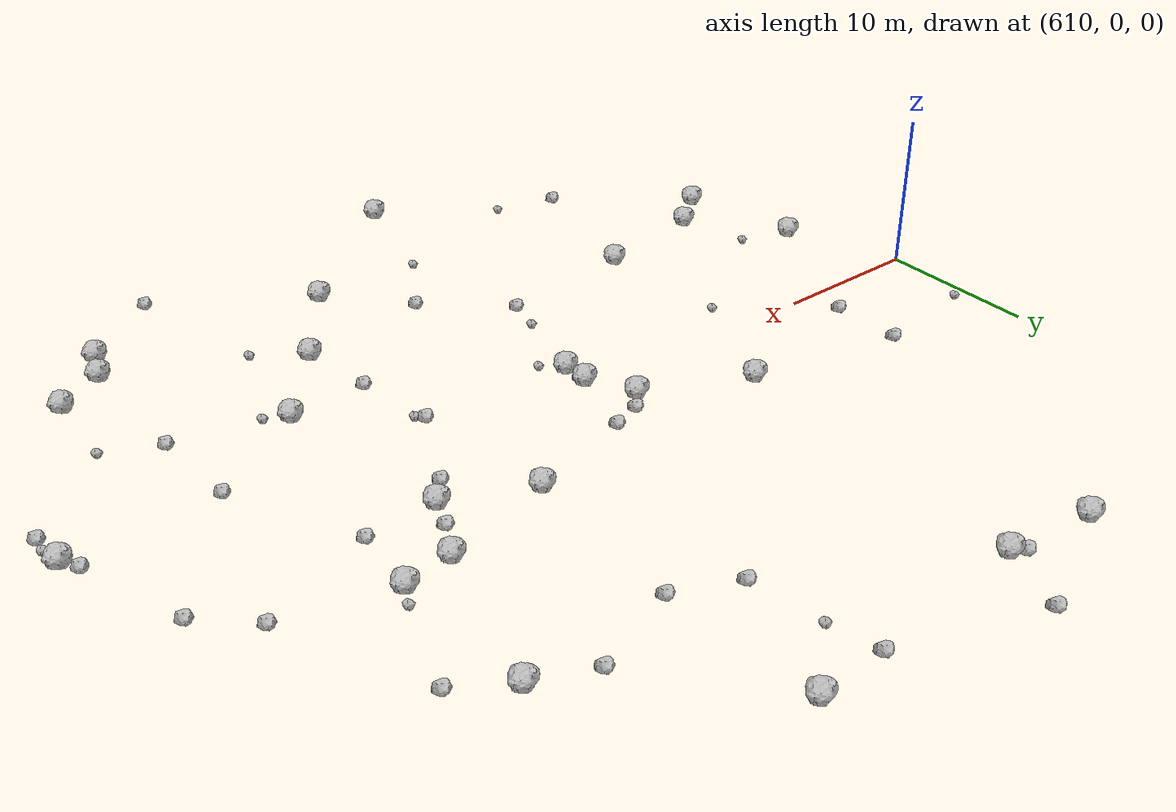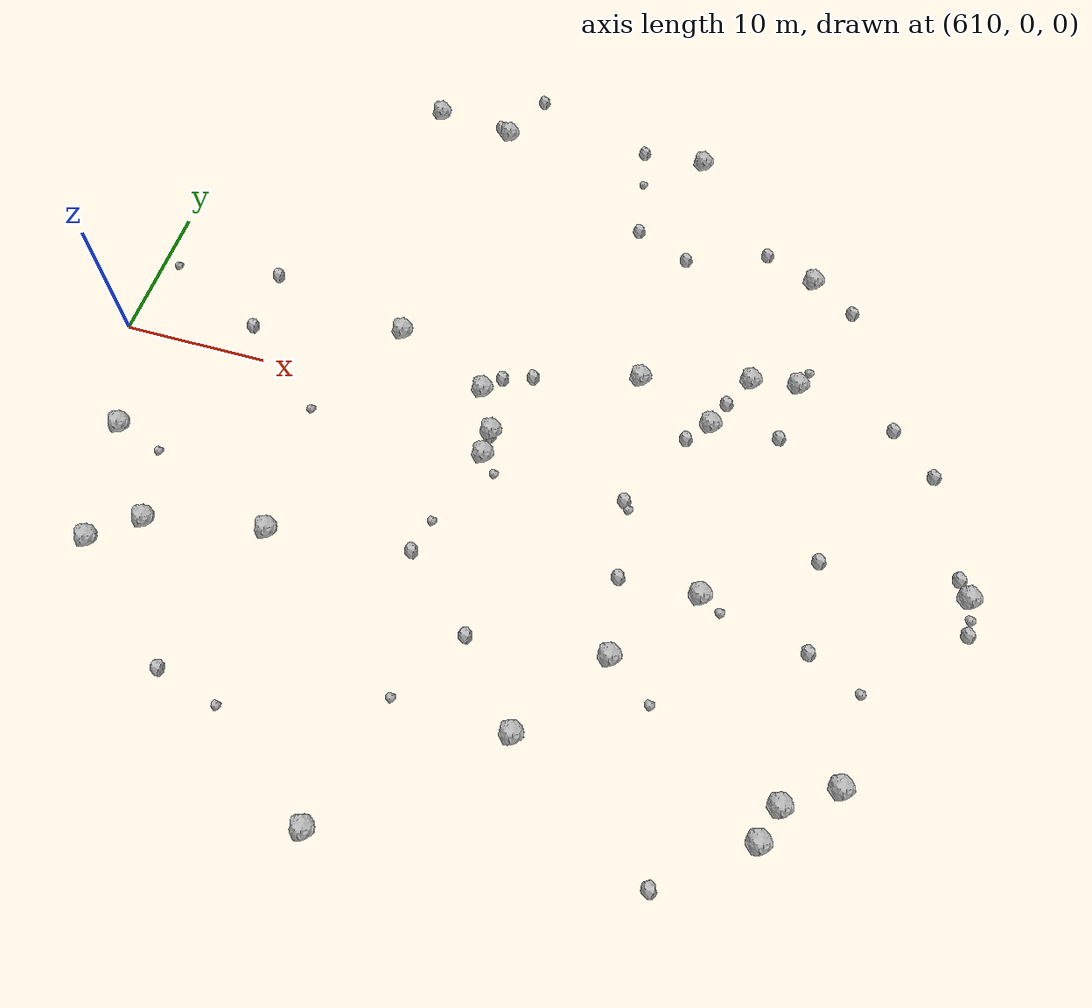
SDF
<sdf version="1.6">
 <world name="default">
  <include><uri>model://sun</uri></include>
  <model name="rock1_16_3">
   <include><uri>model://rock1</uri><pose>654.9809854944493 16.976002066757893 0.5 0 0 0</pose></include>
  </model>
  <model name="rock1_16_4">
   <include><uri>model://rock1</uri><pose>628.4480005715527 4.843090981488757 0.5 0 0 0</pose></include>
  </model>
  <model name="rock1_16_5">
   <include><uri>model://rock1</uri><pose>658.8898398866705 -19.581584257380662 0.5 0 0 0</pose></include>
  </model>
  <model name="rock1_16_6">
   <include><uri>model://rock1</uri><pose>661.9691505951934 -17.67863628571437 0.5 0 0 0</pose></include>
  </model>
  <model name="rock1_16_7">
   <include><uri>model://rock1</uri><pose>667.7500534694318 -4.320710731033984 0.5 0 0 0</pose></include>
  </model>
  <model name="rock1_16_8">
   <include><uri>model://rock1</uri><pose>634.1546093719021 -28.020173012472 0.5 0 0 0</pose></include>
  </model>
  <model name="rock1_16_9">
   <include><uri>model://rock1</uri><pose>617.5935724377537 -13.26640092626306 0.5 0 0 0</pose></include>
  </model>
  <model name="rock1_16_10">
   <include><uri>model://rock1</uri><pose>625.2645430408904 -11.825479157162338 0.5 0 0 0</pose></include>
  </model>
  <model name="rock1_16_11">
   <include><uri>model://rock1</uri><pose>645.0858629341604 5.659839588354792 0.5 0 0 0</pose></include>
  </model>
  <model name="rock1_16_12">
   <include><uri>model://rock1</uri><pose>643.5899534302802 -19.86709482053609 0.5 0 0 0</pose></include>
  </model>
  <model name="rock1_16_13">
   <include><uri>model://rock1</uri><pose>635.1346503988518 1.8468669052493105 0.5 0 0 0</pose></include>
  </model>
  <model name="rock1_16_14">
   <include><uri>model://rock1</uri><pose>630.2602274304618 24.674975489629404 0.5 0 0 0</pose></include>
  </model>
  <model name="rock1_16_15">
   <include><uri>model://rock1</uri><pose>655.3591958341408 8.006620978650659 0.5 0 0 0</pose></include>
  </model>
  <model name="rock1_16_16">
   <include><uri>model://rock1</uri><pose>614.7717144749355 -15.474641228461737 0.5 0 0 0</pose></include>
  </model>
  <model name="rock1_16_17">
   <include><uri>model://rock1</uri><pose>652.1428687526605 -8.601922842660414 0.5 0 0 0</pose></include>
  </model>
  <model name="rock1_16_18">
   <include><uri>model://rock1</uri><pose>636.6421057870167 -2.9246114314570697 0.5 0 0 0</pose></include>
  </model>
  <model name="rock1_16_19">
   <include><uri>model://rock1</uri><pose>647.816428922194 -13.854562386565703 0.5 0 0 0</pose></include>
  </model>
  <model name="rock1_16_20">
   <include><uri>model://rock1</uri><pose>613.053411141979 -7.420114717071296 0.5 0 0 0</pose></include>
  </model>
  <model name="rock1_16_21">
   <include><uri>model://rock1</uri><pose>645.2051838421246 25.84440779516585 0.5 0 0 0</pose></include>
  </model>
  <model name="rock1_16_22">
   <include><uri>model://rock1</uri><pose>658.1094103348402 -21.814349080428933 0.5 0 0 0</pose></include>
  </model>
  <model name="rock1_16_23">
   <include><uri>model://rock1</uri><pose>650.326087935803 3.385723727681764 0.5 0 0 0</pose></include>
  </model>
  <model name="rock1_16_24">
   <include><uri>model://rock1</uri><pose>652.2520895066455 7.499265583162227 0.5 0 0 0</pose></include>
  </model>
  <model name="rock1_16_25">
   <include><uri>model://rock1</uri><pose>636.6354300836173 -1.1294068885804585 0.5 0 0 0</pose></include>
  </model>
  <model name="rock1_16_26">
   <include><uri>model://rock1</uri><pose>624.5524502961941 25.384307207375997 0.5 0 0 0</pose></include>
  </model>
  <model name="rock2_16_0">
   <include><uri>model://rock2</uri><pose>658.6743738497096 -4.36168949516 0.3 0 0 0</pose></include>
  </model>
  <model name="rock2_16_1">
   <include><uri>model://rock2</uri><pose>651.4343570824254 18.458434768147036 0.3 0 0 0</pose></include>
  </model>
  <model name="rock2_16_2">
   <include><uri>model://rock2</uri><pose>640.7180657134058 25.661615794940104 0.3 0 0 0</pose></include>
  </model>
  <model name="rock2_16_3">
   <include><uri>model://rock2</uri><pose>658.9833797192705 -10.36993142818056 0.3 0 0 0</pose></include>
  </model>
  <model name="rock2_16_4">
   <include><uri>model://rock2</uri><pose>652.94700036885 -25.79179132424717 0.3 0 0 0</pose></include>
  </model>
  <model name="rock2_16_5">
   <include><uri>model://rock2</uri><pose>638.1330065252167 3.695642363005817 0.3 0 0 0</pose></include>
  </model>
  <model name="rock2_16_6">
   <include><uri>model://rock2</uri><pose>649.0026445879923 1.8848884342656689 0.3 0 0 0</pose></include>
  </model>
  <model name="rock2_16_7">
   <include><uri>model://rock2</uri><pose>639.2858548279339 -14.990838640995236 0.3 0 0 0</pose></include>
  </model>
  <model name="rock2_16_8">
   <include><uri>model://rock2</uri><pose>642.0576944645238 18.085772906856477 0.3 0 0 0</pose></include>
  </model>
  <model name="rock2_16_9">
   <include><uri>model://rock2</uri><pose>651.0356287160903 5.277807587812845 0.3 0 0 0</pose></include>
  </model>
  <model name="rock2_16_10">
   <include><uri>model://rock2</uri><pose>636.6597494948344 -1.4358688291928061 0.3 0 0 0</pose></include>
  </model>
  <model name="rock2_16_11">
   <include><uri>model://rock2</uri><pose>667.901535850387 -6.642677420546107 0.3 0 0 0</pose></include>
  </model>
  <model name="rock2_16_12">
   <include><uri>model://rock2</uri><pose>618.3836034333685 2.372541152670543 0.3 0 0 0</pose></include>
  </model>
  <model name="rock2_16_13">
   <include><uri>model://rock2</uri><pose>664.8334064946183 3.538010251433157 0.3 0 0 0</pose></include>
  </model>
  <model name="rock2_16_14">
   <include><uri>model://rock2</uri><pose>631.9292126981136 28.731144514641244 0.3 0 0 0</pose></include>
  </model>
  <model name="rock2_16_15">
   <include><uri>model://rock2</uri><pose>636.1808546180131 3.0294930016361903 0.3 0 0 0</pose></include>
  </model>
  <model name="rock2_16_16">
   <include><uri>model://rock2</uri><pose>661.937922797287 6.2860243689597795 0.3 0 0 0</pose></include>
  </model>
  <model name="rock2_16_17">
   <include><uri>model://rock2</uri><pose>646.218347776848 -3.632374456805614 0.3 0 0 0</pose></include>
  </model>
  <model name="rock2_16_18">
   <include><uri>model://rock2</uri><pose>654.8208955962496 3.633910725377973 0.3 0 0 0</pose></include>
  </model>
  <model name="rock2_16_19">
   <include><uri>model://rock2</uri><pose>647.0988665598023 -8.824033361176362 0.3 0 0 0</pose></include>
  </model>
  <model name="rock2_16_20">
   <include><uri>model://rock2</uri><pose>618.409356825577 6.954691386960455 0.3 0 0 0</pose></include>
  </model>
  <model name="rock2_16_21">
   <include><uri>model://rock2</uri><pose>629.4756282514054 25.176358419113136 0.3 0 0 0</pose></include>
  </model>
  <model name="rock2_16_22">
   <include><uri>model://rock2</uri><pose>667.0818608310624 -3.192861510446015 0.3 0 0 0</pose></include>
  </model>
  <model name="rock2_16_23">
   <include><uri>model://rock2</uri><pose>645.9007146605859 16.421692349701225 0.3 0 0 0</pose></include>
  </model>
  <model name="rock2_16_24">
   <include><uri>model://rock2</uri><pose>634.4241491615514 -10.668868264278647 0.3 0 0 0</pose></include>
  </model>
  <model name="rock2_16_25">
   <include><uri>model://rock2</uri><pose>622.6362637202069 -21.916560115547263 0.3 0 0 0</pose></include>
  </model>
  <model name="rock2_16_26">
   <include><uri>model://rock2</uri><pose>658.0050417018966 15.001327635817262 0.3 0 0 0</pose></include>
  </model>
  <model name="rock3_16_0">
   <include><uri>model://rock3</uri><pose>662.278419426665 -12.020374054290595 0.2 0 0 0</pose></include>
  </model>
  <model name="rock3_16_1">
   <include><uri>model://rock3</uri><pose>637.7076293858948 -4.10024362943259 0.2 0 0 0</pose></include>
  </model>
  <model name="rock3_16_2">
   <include><uri>model://rock3</uri><pose>646.5882691230445 -4.186944582088458 0.2 0 0 0</pose></include>
  </model>
  <model name="rock3_16_3">
   <include><uri>model://rock3</uri><pose>624.645760873238 -2.786029832382976 0.2 0 0 0</pose></include>
  </model>
  <model name="rock3_16_4">
   <include><uri>model://rock3</uri><pose>655.9228848261541 9.240815886826255 0.2 0 0 0</pose></include>
  </model>
  <model name="rock3_16_5">
   <include><uri>model://rock3</uri><pose>641.3281539244355 22.562207375509175 0.2 0 0 0</pose></include>
  </model>
  <model name="rock3_16_6">
   <include><uri>model://rock3</uri><pose>611.1440655072724 5.815576964660238 0.2 0 0 0</pose></include>
  </model>
  <model name="rock3_16_7">
   <include><uri>model://rock3</uri><pose>667.9656205764987 -5.6664230845448 0.2 0 0 0</pose></include>
  </model>
  <model name="rock3_16_8">
   <include><uri>model://rock3</uri><pose>636.2672072322097 -19.786261724308844 0.2 0 0 0</pose></include>
  </model>
  <model name="rock3_16_9">
   <include><uri>model://rock3</uri><pose>616.3267532169031 -8.541818778548667 0.2 0 0 0</pose></include>
  </model>
  <model name="rock3_16_10">
   <include><uri>model://rock3</uri><pose>634.9564817995006 -8.375382138702733 0.2 0 0 0</pose></include>
  </model>
  <model name="rock3_16_11">
   <include><uri>model://rock3</uri><pose>653.4898825149794 -9.371840159402169 0.2 0 0 0</pose></include>
  </model>
  <model name="rock3_16_12">
   <include><uri>model://rock3</uri><pose>626.7589616720159 -23.031630369466548 0.2 0 0 0</pose></include>
  </model>
  <model name="rock3_16_13">
   <include><uri>model://rock3</uri><pose>650.7045619003159 -16.05085758655217 0.2 0 0 0</pose></include>
  </model>
 </world>
</sdf>
